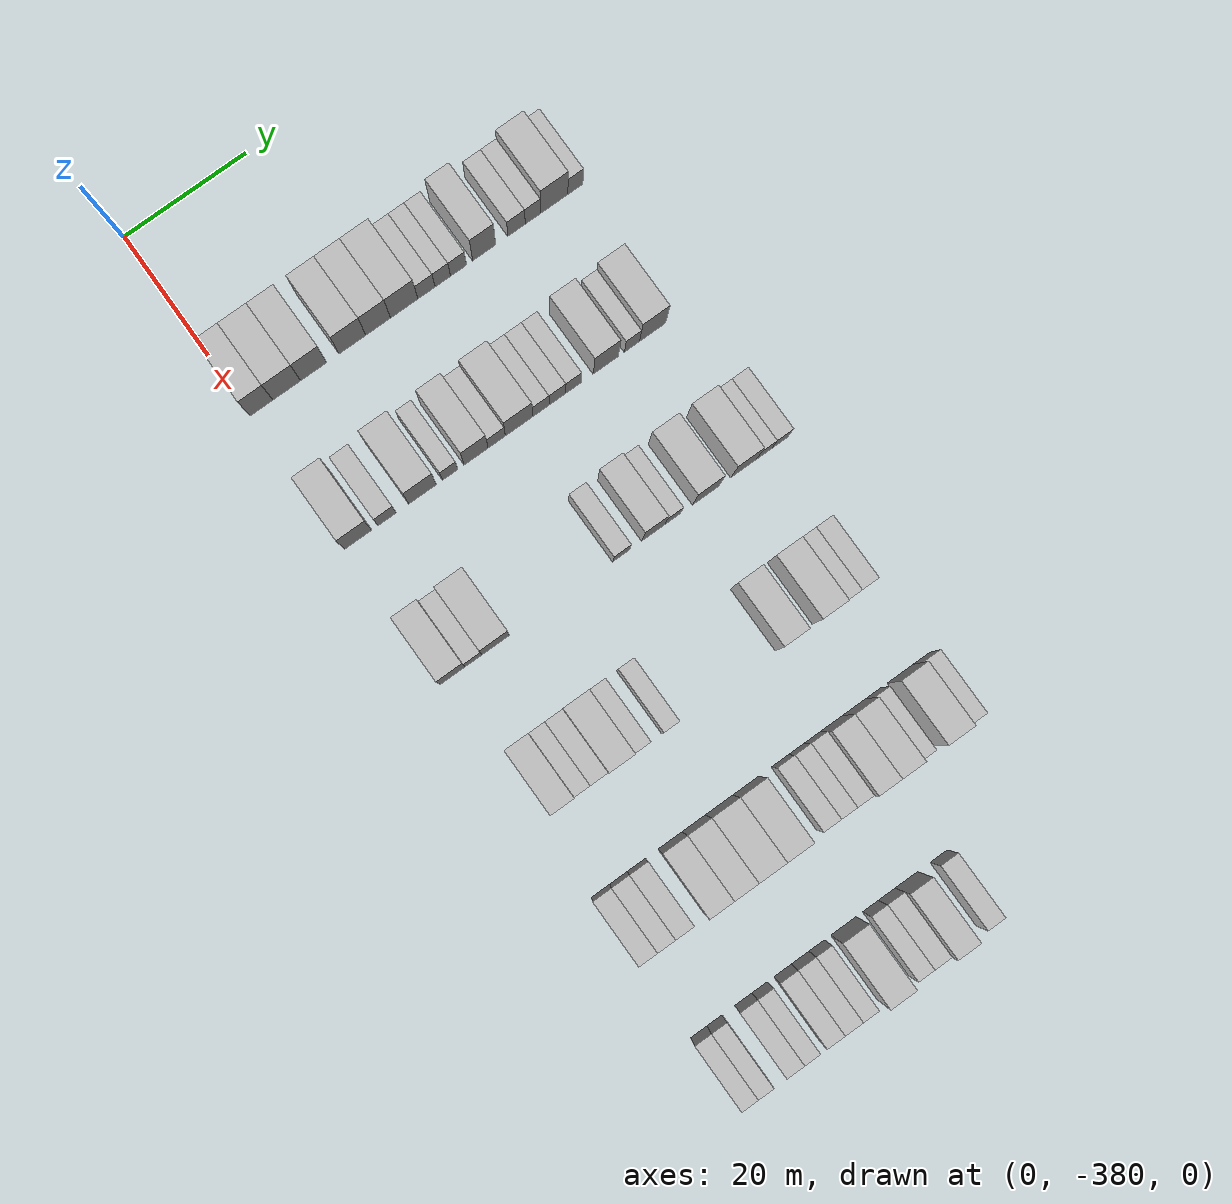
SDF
<sdf version="1.6">
 <world name="default">
  <model name="building_1">
   <static>1</static>
   <pose>25.0000 -378.1402 0 0.000000 0.000000 0.000000</pose>
   <link name="link">
    <pose>0 0 4.50 0 0 0</pose>
    <collision name="collision"><geometry><box><size>10.0000 3.7196 9.0000</size></box></geometry></collision>
    <visual name="visual">
     <cast_shadows>0</cast_shadows>
     <geometry><box><size>10.0000 3.7196 9.0000</size></box></geometry>
     <material>
      <script>
       <uri>model://HANNAS_wall/materials/scripts</uri>
       <uri>model://HANNAS_wall/materials/textures</uri>
       <name>vrc/HANNAS_wall</name>
      </script>
     </material>
    </visual>
   </link>
  </model>
  <model name="building_2">
   <static>1</static>
   <pose>25.0000 -374.0354 0 0.000000 0.000000 0.000000</pose>
   <link name="link">
    <pose>0 0 4.50 0 0 0</pose>
    <collision name="collision"><geometry><box><size>10.0000 4.4899 9.0000</size></box></geometry></collision>
    <visual name="visual">
     <cast_shadows>0</cast_shadows>
     <geometry><box><size>10.0000 4.4899 9.0000</size></box></geometry>
     <material>
      <script>
       <uri>model://HANNAS_wall/materials/scripts</uri>
       <uri>model://HANNAS_wall/materials/textures</uri>
       <name>vrc/HANNAS_wall</name>
      </script>
     </material>
    </visual>
   </link>
  </model>
  <model name="building_3">
   <static>1</static>
   <pose>25.0000 -369.6766 0 0.000000 0.000000 0.000000</pose>
   <link name="link">
    <pose>0 0 4.50 0 0 0</pose>
    <collision name="collision"><geometry><box><size>10.0000 4.2278 9.0000</size></box></geometry></collision>
    <visual name="visual">
     <cast_shadows>0</cast_shadows>
     <geometry><box><size>10.0000 4.2278 9.0000</size></box></geometry>
     <material>
      <script>
       <uri>model://HANNAS_wall/materials/scripts</uri>
       <uri>model://HANNAS_wall/materials/textures</uri>
       <name>vrc/HANNAS_wall</name>
      </script>
     </material>
    </visual>
   </link>
  </model>
  <model name="building_4">
   <static>1</static>
   <pose>25.0000 -363.3770 0 0.000000 0.000000 0.000000</pose>
   <link name="link">
    <pose>0 0 4.50 0 0 0</pose>
    <collision name="collision"><geometry><box><size>10.0000 4.3713 9.0000</size></box></geometry></collision>
    <visual name="visual">
     <cast_shadows>0</cast_shadows>
     <geometry><box><size>10.0000 4.3713 9.0000</size></box></geometry>
     <material>
      <script>
       <uri>model://HANNAS_wall/materials/scripts</uri>
       <uri>model://HANNAS_wall/materials/textures</uri>
       <name>vrc/HANNAS_wall</name>
      </script>
     </material>
    </visual>
   </link>
  </model>
  <model name="building_5">
   <static>1</static>
   <pose>25.0000 -359.1662 0 0.000000 0.000000 0.000000</pose>
   <link name="link">
    <pose>0 0 4.50 0 0 0</pose>
    <collision name="collision"><geometry><box><size>10.0000 4.0502 9.0000</size></box></geometry></collision>
    <visual name="visual">
     <cast_shadows>0</cast_shadows>
     <geometry><box><size>10.0000 4.0502 9.0000</size></box></geometry>
     <material>
      <script>
       <uri>model://HANNAS_wall/materials/scripts</uri>
       <uri>model://HANNAS_wall/materials/textures</uri>
       <name>vrc/HANNAS_wall</name>
      </script>
     </material>
    </visual>
   </link>
  </model>
  <model name="building_6">
   <static>1</static>
   <pose>25.0000 -354.8929 0 0.000000 0.000000 0.000000</pose>
   <link name="link">
    <pose>0 0 4.50 0 0 0</pose>
    <collision name="collision"><geometry><box><size>10.0000 4.4964 9.0000</size></box></geometry></collision>
    <visual name="visual">
     <cast_shadows>0</cast_shadows>
     <geometry><box><size>10.0000 4.4964 9.0000</size></box></geometry>
     <material>
      <script>
       <uri>model://HANNAS_wall/materials/scripts</uri>
       <uri>model://HANNAS_wall/materials/textures</uri>
       <name>vrc/HANNAS_wall</name>
      </script>
     </material>
    </visual>
   </link>
  </model>
  <model name="building_7">
   <static>1</static>
   <pose>25.0000 -351.2328 0 0.000000 0.000000 0.000000</pose>
   <link name="link">
    <pose>0 0 3.00 0 0 0</pose>
    <collision name="collision"><geometry><box><size>10.0000 2.8237 6.0000</size></box></geometry></collision>
    <visual name="visual">
     <cast_shadows>0</cast_shadows>
     <geometry><box><size>10.0000 2.8237 6.0000</size></box></geometry>
     <material>
      <script>
       <uri>model://HANNAS_wall/materials/scripts</uri>
       <uri>model://HANNAS_wall/materials/textures</uri>
       <name>vrc/HANNAS_wall</name>
      </script>
     </material>
    </visual>
   </link>
  </model>
  <model name="building_8">
   <static>1</static>
   <pose>25.0000 -348.5571 0 0.000000 0.000000 0.000000</pose>
   <link name="link">
    <pose>0 0 3.00 0 0 0</pose>
    <collision name="collision"><geometry><box><size>10.0000 2.5278 6.0000</size></box></geometry></collision>
    <visual name="visual">
     <cast_shadows>0</cast_shadows>
     <geometry><box><size>10.0000 2.5278 6.0000</size></box></geometry>
     <material>
      <script>
       <uri>model://HANNAS_wall/materials/scripts</uri>
       <uri>model://HANNAS_wall/materials/textures</uri>
       <name>vrc/HANNAS_wall</name>
      </script>
     </material>
    </visual>
   </link>
  </model>
  <model name="building_9">
   <static>1</static>
   <pose>25.0000 -345.9805 0 0.000000 0.000000 0.000000</pose>
   <link name="link">
    <pose>0 0 3.00 0 0 0</pose>
    <collision name="collision"><geometry><box><size>10.0000 2.6253 6.0000</size></box></geometry></collision>
    <visual name="visual">
     <cast_shadows>0</cast_shadows>
     <geometry><box><size>10.0000 2.6253 6.0000</size></box></geometry>
     <material>
      <script>
       <uri>model://HANNAS_wall/materials/scripts</uri>
       <uri>model://HANNAS_wall/materials/textures</uri>
       <name>vrc/HANNAS_wall</name>
      </script>
     </material>
    </visual>
   </link>
  </model>
  <model name="building_10">
   <static>1</static>
   <pose>25.0000 -341.7650 0 0.000000 0.000000 0.000000</pose>
   <link name="link">
    <pose>0 0 4.50 0 0 0</pose>
    <collision name="collision"><geometry><box><size>10.0000 3.8057 9.0000</size></box></geometry></collision>
    <visual name="visual">
     <cast_shadows>0</cast_shadows>
     <geometry><box><size>10.0000 3.8057 9.0000</size></box></geometry>
     <material>
      <script>
       <uri>model://HANNAS_wall/materials/scripts</uri>
       <uri>model://HANNAS_wall/materials/textures</uri>
       <name>vrc/HANNAS_wall</name>
      </script>
     </material>
    </visual>
   </link>
  </model>
  <model name="building_11">
   <static>1</static>
   <pose>25.0000 -336.4213 0 0.000000 0.000000 0.000000</pose>
   <link name="link">
    <pose>0 0 3.00 0 0 0</pose>
    <collision name="collision"><geometry><box><size>10.0000 2.8817 6.0000</size></box></geometry></collision>
    <visual name="visual">
     <cast_shadows>0</cast_shadows>
     <geometry><box><size>10.0000 2.8817 6.0000</size></box></geometry>
     <material>
      <script>
       <uri>model://HANNAS_wall/materials/scripts</uri>
       <uri>model://HANNAS_wall/materials/textures</uri>
       <name>vrc/HANNAS_wall</name>
      </script>
     </material>
    </visual>
   </link>
  </model>
  <model name="building_12">
   <static>1</static>
   <pose>25.0000 -333.7093 0 0.000000 0.000000 0.000000</pose>
   <link name="link">
    <pose>0 0 3.00 0 0 0</pose>
    <collision name="collision"><geometry><box><size>10.0000 2.5423 6.0000</size></box></geometry></collision>
    <visual name="visual">
     <cast_shadows>0</cast_shadows>
     <geometry><box><size>10.0000 2.5423 6.0000</size></box></geometry>
     <material>
      <script>
       <uri>model://HANNAS_wall/materials/scripts</uri>
       <uri>model://HANNAS_wall/materials/textures</uri>
       <name>vrc/HANNAS_wall</name>
      </script>
     </material>
    </visual>
   </link>
  </model>
  <model name="building_13">
   <static>1</static>
   <pose>25.0000 -330.1908 0 0.000000 0.000000 0.000000</pose>
   <link name="link">
    <pose>0 0 4.50 0 0 0</pose>
    <collision name="collision"><geometry><box><size>10.0000 4.4947 9.0000</size></box></geometry></collision>
    <visual name="visual">
     <cast_shadows>0</cast_shadows>
     <geometry><box><size>10.0000 4.4947 9.0000</size></box></geometry>
     <material>
      <script>
       <uri>model://HANNAS_wall/materials/scripts</uri>
       <uri>model://HANNAS_wall/materials/textures</uri>
       <name>vrc/HANNAS_wall</name>
      </script>
     </material>
    </visual>
   </link>
  </model>
  <model name="building_14">
   <static>1</static>
   <pose>25.0000 -326.6893 0 0.000000 0.000000 0.000000</pose>
   <link name="link">
    <pose>0 0 3.00 0 0 0</pose>
    <collision name="collision"><geometry><box><size>10.0000 2.5083 6.0000</size></box></geometry></collision>
    <visual name="visual">
     <cast_shadows>0</cast_shadows>
     <geometry><box><size>10.0000 2.5083 6.0000</size></box></geometry>
     <material>
      <script>
       <uri>model://HANNAS_wall/materials/scripts</uri>
       <uri>model://HANNAS_wall/materials/textures</uri>
       <name>vrc/HANNAS_wall</name>
      </script>
     </material>
    </visual>
   </link>
  </model>
  <model name="building_186">
   <static>1</static>
   <pose>47.0000 -377.8016 0 0.000000 0.000000 0.000000</pose>
   <link name="link">
    <pose>0 0 4.50 0 0 0</pose>
    <collision name="collision"><geometry><box><size>10.0000 4.3968 9.0000</size></box></geometry></collision>
    <visual name="visual">
     <cast_shadows>0</cast_shadows>
     <geometry><box><size>10.0000 4.3968 9.0000</size></box></geometry>
     <material>
      <script>
       <uri>model://HANNAS_wall/materials/scripts</uri>
       <uri>model://HANNAS_wall/materials/textures</uri>
       <name>vrc/HANNAS_wall</name>
      </script>
     </material>
    </visual>
   </link>
  </model>
  <model name="building_187">
   <static>1</static>
   <pose>47.0000 -373.1152 0 0.000000 0.000000 0.000000</pose>
   <link name="link">
    <pose>0 0 3.00 0 0 0</pose>
    <collision name="collision"><geometry><box><size>10.0000 2.9759 6.0000</size></box></geometry></collision>
    <visual name="visual">
     <cast_shadows>0</cast_shadows>
     <geometry><box><size>10.0000 2.9759 6.0000</size></box></geometry>
     <material>
      <script>
       <uri>model://HANNAS_wall/materials/scripts</uri>
       <uri>model://HANNAS_wall/materials/textures</uri>
       <name>vrc/HANNAS_wall</name>
      </script>
     </material>
    </visual>
   </link>
  </model>
  <model name="building_188">
   <static>1</static>
   <pose>47.0000 -367.3849 0 0.000000 0.000000 0.000000</pose>
   <link name="link">
    <pose>0 0 4.50 0 0 0</pose>
    <collision name="collision"><geometry><box><size>10.0000 4.4847 9.0000</size></box></geometry></collision>
    <visual name="visual">
     <cast_shadows>0</cast_shadows>
     <geometry><box><size>10.0000 4.4847 9.0000</size></box></geometry>
     <material>
      <script>
       <uri>model://HANNAS_wall/materials/scripts</uri>
       <uri>model://HANNAS_wall/materials/textures</uri>
       <name>vrc/HANNAS_wall</name>
      </script>
     </material>
    </visual>
   </link>
  </model>
  <model name="building_189">
   <static>1</static>
   <pose>47.0000 -362.8896 0 0.000000 0.000000 0.000000</pose>
   <link name="link">
    <pose>0 0 3.00 0 0 0</pose>
    <collision name="collision"><geometry><box><size>10.0000 2.5059 6.0000</size></box></geometry></collision>
    <visual name="visual">
     <cast_shadows>0</cast_shadows>
     <geometry><box><size>10.0000 2.5059 6.0000</size></box></geometry>
     <material>
      <script>
       <uri>model://HANNAS_wall/materials/scripts</uri>
       <uri>model://HANNAS_wall/materials/textures</uri>
       <name>vrc/HANNAS_wall</name>
      </script>
     </material>
    </visual>
   </link>
  </model>
  <model name="building_190">
   <static>1</static>
   <pose>47.0000 -358.6794 0 0.000000 0.000000 0.000000</pose>
   <link name="link">
    <pose>0 0 4.50 0 0 0</pose>
    <collision name="collision"><geometry><box><size>10.0000 3.9146 9.0000</size></box></geometry></collision>
    <visual name="visual">
     <cast_shadows>0</cast_shadows>
     <geometry><box><size>10.0000 3.9146 9.0000</size></box></geometry>
     <material>
      <script>
       <uri>model://HANNAS_wall/materials/scripts</uri>
       <uri>model://HANNAS_wall/materials/textures</uri>
       <name>vrc/HANNAS_wall</name>
      </script>
     </material>
    </visual>
   </link>
  </model>
  <model name="building_191">
   <static>1</static>
   <pose>47.0000 -355.3117 0 0.000000 0.000000 0.000000</pose>
   <link name="link">
    <pose>0 0 3.00 0 0 0</pose>
    <collision name="collision"><geometry><box><size>10.0000 2.8207 6.0000</size></box></geometry></collision>
    <visual name="visual">
     <cast_shadows>0</cast_shadows>
     <geometry><box><size>10.0000 2.8207 6.0000</size></box></geometry>
     <material>
      <script>
       <uri>model://HANNAS_wall/materials/scripts</uri>
       <uri>model://HANNAS_wall/materials/textures</uri>
       <name>vrc/HANNAS_wall</name>
      </script>
     </material>
    </visual>
   </link>
  </model>
  <model name="building_192">
   <static>1</static>
   <pose>47.0000 -351.6714 0 0.000000 0.000000 0.000000</pose>
   <link name="link">
    <pose>0 0 4.50 0 0 0</pose>
    <collision name="collision"><geometry><box><size>10.0000 4.4599 9.0000</size></box></geometry></collision>
    <visual name="visual">
     <cast_shadows>0</cast_shadows>
     <geometry><box><size>10.0000 4.4599 9.0000</size></box></geometry>
     <material>
      <script>
       <uri>model://HANNAS_wall/materials/scripts</uri>
       <uri>model://HANNAS_wall/materials/textures</uri>
       <name>vrc/HANNAS_wall</name>
      </script>
     </material>
    </visual>
   </link>
  </model>
  <model name="building_193">
   <static>1</static>
   <pose>47.0000 -348.0927 0 0.000000 0.000000 0.000000</pose>
   <link name="link">
    <pose>0 0 3.00 0 0 0</pose>
    <collision name="collision"><geometry><box><size>10.0000 2.6975 6.0000</size></box></geometry></collision>
    <visual name="visual">
     <cast_shadows>0</cast_shadows>
     <geometry><box><size>10.0000 2.6975 6.0000</size></box></geometry>
     <material>
      <script>
       <uri>model://HANNAS_wall/materials/scripts</uri>
       <uri>model://HANNAS_wall/materials/textures</uri>
       <name>vrc/HANNAS_wall</name>
      </script>
     </material>
    </visual>
   </link>
  </model>
  <model name="building_194">
   <static>1</static>
   <pose>47.0000 -345.3940 0 0.000000 0.000000 0.000000</pose>
   <link name="link">
    <pose>0 0 3.00 0 0 0</pose>
    <collision name="collision"><geometry><box><size>10.0000 2.6999 6.0000</size></box></geometry></collision>
    <visual name="visual">
     <cast_shadows>0</cast_shadows>
     <geometry><box><size>10.0000 2.6999 6.0000</size></box></geometry>
     <material>
      <script>
       <uri>model://HANNAS_wall/materials/scripts</uri>
       <uri>model://HANNAS_wall/materials/textures</uri>
       <name>vrc/HANNAS_wall</name>
      </script>
     </material>
    </visual>
   </link>
  </model>
  <model name="building_195">
   <static>1</static>
   <pose>47.0000 -342.7726 0 0.000000 0.000000 0.000000</pose>
   <link name="link">
    <pose>0 0 3.00 0 0 0</pose>
    <collision name="collision"><geometry><box><size>10.0000 2.5429 6.0000</size></box></geometry></collision>
    <visual name="visual">
     <cast_shadows>0</cast_shadows>
     <geometry><box><size>10.0000 2.5429 6.0000</size></box></geometry>
     <material>
      <script>
       <uri>model://HANNAS_wall/materials/scripts</uri>
       <uri>model://HANNAS_wall/materials/textures</uri>
       <name>vrc/HANNAS_wall</name>
      </script>
     </material>
    </visual>
   </link>
  </model>
  <model name="building_196">
   <static>1</static>
   <pose>47.0000 -337.4416 0 0.000000 0.000000 0.000000</pose>
   <link name="link">
    <pose>0 0 4.50 0 0 0</pose>
    <collision name="collision"><geometry><box><size>10.0000 4.1190 9.0000</size></box></geometry></collision>
    <visual name="visual">
     <cast_shadows>0</cast_shadows>
     <geometry><box><size>10.0000 4.1190 9.0000</size></box></geometry>
     <material>
      <script>
       <uri>model://HANNAS_wall/materials/scripts</uri>
       <uri>model://HANNAS_wall/materials/textures</uri>
       <name>vrc/HANNAS_wall</name>
      </script>
     </material>
    </visual>
   </link>
  </model>
  <model name="building_197">
   <static>1</static>
   <pose>47.0000 -333.1390 0 0.000000 0.000000 0.000000</pose>
   <link name="link">
    <pose>0 0 3.00 0 0 0</pose>
    <collision name="collision"><geometry><box><size>10.0000 2.4863 6.0000</size></box></geometry></collision>
    <visual name="visual">
     <cast_shadows>0</cast_shadows>
     <geometry><box><size>10.0000 2.4863 6.0000</size></box></geometry>
     <material>
      <script>
       <uri>model://HANNAS_wall/materials/scripts</uri>
       <uri>model://HANNAS_wall/materials/textures</uri>
       <name>vrc/HANNAS_wall</name>
      </script>
     </material>
    </visual>
   </link>
  </model>
  <model name="building_198">
   <static>1</static>
   <pose>47.0000 -329.7337 0 0.000000 0.000000 0.000000</pose>
   <link name="link">
    <pose>0 0 4.50 0 0 0</pose>
    <collision name="collision"><geometry><box><size>10.0000 4.3243 9.0000</size></box></geometry></collision>
    <visual name="visual">
     <cast_shadows>0</cast_shadows>
     <geometry><box><size>10.0000 4.3243 9.0000</size></box></geometry>
     <material>
      <script>
       <uri>model://HANNAS_wall/materials/scripts</uri>
       <uri>model://HANNAS_wall/materials/textures</uri>
       <name>vrc/HANNAS_wall</name>
      </script>
     </material>
    </visual>
   </link>
  </model>
  <model name="building_371">
   <static>1</static>
   <pose>69.0000 -377.9864 0 0.000000 0.000000 0.000000</pose>
   <link name="link">
    <pose>0 0 4.50 0 0 0</pose>
    <collision name="collision"><geometry><box><size>10.0000 4.0272 9.0000</size></box></geometry></collision>
    <visual name="visual">
     <cast_shadows>0</cast_shadows>
     <geometry><box><size>10.0000 4.0272 9.0000</size></box></geometry>
     <material>
      <script>
       <uri>model://HANNAS_wall/materials/scripts</uri>
       <uri>model://HANNAS_wall/materials/textures</uri>
       <name>vrc/HANNAS_wall</name>
      </script>
     </material>
    </visual>
   </link>
  </model>
  <model name="building_372">
   <static>1</static>
   <pose>69.0000 -374.6378 0 0.000000 0.000000 0.000000</pose>
   <link name="link">
    <pose>0 0 3.00 0 0 0</pose>
    <collision name="collision"><geometry><box><size>10.0000 2.6700 6.0000</size></box></geometry></collision>
    <visual name="visual">
     <cast_shadows>0</cast_shadows>
     <geometry><box><size>10.0000 2.6700 6.0000</size></box></geometry>
     <material>
      <script>
       <uri>model://HANNAS_wall/materials/scripts</uri>
       <uri>model://HANNAS_wall/materials/textures</uri>
       <name>vrc/HANNAS_wall</name>
      </script>
     </material>
    </visual>
   </link>
  </model>
  <model name="building_373">
   <static>1</static>
   <pose>69.0000 -371.1029 0 0.000000 0.000000 0.000000</pose>
   <link name="link">
    <pose>0 0 4.50 0 0 0</pose>
    <collision name="collision"><geometry><box><size>10.0000 4.3998 9.0000</size></box></geometry></collision>
    <visual name="visual">
     <cast_shadows>0</cast_shadows>
     <geometry><box><size>10.0000 4.3998 9.0000</size></box></geometry>
     <material>
      <script>
       <uri>model://HANNAS_wall/materials/scripts</uri>
       <uri>model://HANNAS_wall/materials/textures</uri>
       <name>vrc/HANNAS_wall</name>
      </script>
     </material>
    </visual>
   </link>
  </model>
  <model name="building_374">
   <static>1</static>
   <pose>69.0000 -350.7700 0 0.000000 0.000000 0.000000</pose>
   <link name="link">
    <pose>0 0 3.00 0 0 0</pose>
    <collision name="collision"><geometry><box><size>10.0000 2.7554 6.0000</size></box></geometry></collision>
    <visual name="visual">
     <cast_shadows>0</cast_shadows>
     <geometry><box><size>10.0000 2.7554 6.0000</size></box></geometry>
     <material>
      <script>
       <uri>model://HANNAS_wall/materials/scripts</uri>
       <uri>model://HANNAS_wall/materials/textures</uri>
       <name>vrc/HANNAS_wall</name>
      </script>
     </material>
    </visual>
   </link>
  </model>
  <model name="building_375">
   <static>1</static>
   <pose>69.0000 -345.5455 0 0.000000 0.000000 0.000000</pose>
   <link name="link">
    <pose>0 0 4.50 0 0 0</pose>
    <collision name="collision"><geometry><box><size>10.0000 3.6934 9.0000</size></box></geometry></collision>
    <visual name="visual">
     <cast_shadows>0</cast_shadows>
     <geometry><box><size>10.0000 3.6934 9.0000</size></box></geometry>
     <material>
      <script>
       <uri>model://HANNAS_wall/materials/scripts</uri>
       <uri>model://HANNAS_wall/materials/textures</uri>
       <name>vrc/HANNAS_wall</name>
      </script>
     </material>
    </visual>
   </link>
  </model>
  <model name="building_376">
   <static>1</static>
   <pose>69.0000 -342.3881 0 0.000000 0.000000 0.000000</pose>
   <link name="link">
    <pose>0 0 3.00 0 0 0</pose>
    <collision name="collision"><geometry><box><size>10.0000 2.6215 6.0000</size></box></geometry></collision>
    <visual name="visual">
     <cast_shadows>0</cast_shadows>
     <geometry><box><size>10.0000 2.6215 6.0000</size></box></geometry>
     <material>
      <script>
       <uri>model://HANNAS_wall/materials/scripts</uri>
       <uri>model://HANNAS_wall/materials/textures</uri>
       <name>vrc/HANNAS_wall</name>
      </script>
     </material>
    </visual>
   </link>
  </model>
  <model name="building_377">
   <static>1</static>
   <pose>69.0000 -336.9369 0 0.000000 0.000000 0.000000</pose>
   <link name="link">
    <pose>0 0 4.50 0 0 0</pose>
    <collision name="collision"><geometry><box><size>10.0000 4.2810 9.0000</size></box></geometry></collision>
    <visual name="visual">
     <cast_shadows>0</cast_shadows>
     <geometry><box><size>10.0000 4.2810 9.0000</size></box></geometry>
     <material>
      <script>
       <uri>model://HANNAS_wall/materials/scripts</uri>
       <uri>model://HANNAS_wall/materials/textures</uri>
       <name>vrc/HANNAS_wall</name>
      </script>
     </material>
    </visual>
   </link>
  </model>
  <model name="building_378">
   <static>1</static>
   <pose>69.0000 -330.6992 0 0.000000 0.000000 0.000000</pose>
   <link name="link">
    <pose>0 0 4.50 0 0 0</pose>
    <collision name="collision"><geometry><box><size>10.0000 4.1943 9.0000</size></box></geometry></collision>
    <visual name="visual">
     <cast_shadows>0</cast_shadows>
     <geometry><box><size>10.0000 4.1943 9.0000</size></box></geometry>
     <material>
      <script>
       <uri>model://HANNAS_wall/materials/scripts</uri>
       <uri>model://HANNAS_wall/materials/textures</uri>
       <name>vrc/HANNAS_wall</name>
      </script>
     </material>
    </visual>
   </link>
  </model>
  <model name="building_379">
   <static>1</static>
   <pose>69.0000 -327.3389 0 0.000000 0.000000 0.000000</pose>
   <link name="link">
    <pose>0 0 3.00 0 0 0</pose>
    <collision name="collision"><geometry><box><size>10.0000 2.5264 6.0000</size></box></geometry></collision>
    <visual name="visual">
     <cast_shadows>0</cast_shadows>
     <geometry><box><size>10.0000 2.5264 6.0000</size></box></geometry>
     <material>
      <script>
       <uri>model://HANNAS_wall/materials/scripts</uri>
       <uri>model://HANNAS_wall/materials/textures</uri>
       <name>vrc/HANNAS_wall</name>
      </script>
     </material>
    </visual>
   </link>
  </model>
  <model name="building_380">
   <static>1</static>
   <pose>69.0000 -324.7512 0 0.000000 0.000000 0.000000</pose>
   <link name="link">
    <pose>0 0 3.00 0 0 0</pose>
    <collision name="collision"><geometry><box><size>10.0000 2.6488 6.0000</size></box></geometry></collision>
    <visual name="visual">
     <cast_shadows>0</cast_shadows>
     <geometry><box><size>10.0000 2.6488 6.0000</size></box></geometry>
     <material>
      <script>
       <uri>model://HANNAS_wall/materials/scripts</uri>
       <uri>model://HANNAS_wall/materials/textures</uri>
       <name>vrc/HANNAS_wall</name>
      </script>
     </material>
    </visual>
   </link>
  </model>
  <model name="building_563">
   <static>1</static>
   <pose>91.0000 -376.1266 0 0.000000 0.000000 0.000000</pose>
   <link name="link">
    <pose>0 0 4.50 0 0 0</pose>
    <collision name="collision"><geometry><box><size>10.0000 3.7467 9.0000</size></box></geometry></collision>
    <visual name="visual">
     <cast_shadows>0</cast_shadows>
     <geometry><box><size>10.0000 3.7467 9.0000</size></box></geometry>
     <material>
      <script>
       <uri>model://HANNAS_wall/materials/scripts</uri>
       <uri>model://HANNAS_wall/materials/textures</uri>
       <name>vrc/HANNAS_wall</name>
      </script>
     </material>
    </visual>
   </link>
  </model>
  <model name="building_564">
   <static>1</static>
   <pose>91.0000 -372.9911 0 0.000000 0.000000 0.000000</pose>
   <link name="link">
    <pose>0 0 3.00 0 0 0</pose>
    <collision name="collision"><geometry><box><size>10.0000 2.5243 6.0000</size></box></geometry></collision>
    <visual name="visual">
     <cast_shadows>0</cast_shadows>
     <geometry><box><size>10.0000 2.5243 6.0000</size></box></geometry>
     <material>
      <script>
       <uri>model://HANNAS_wall/materials/scripts</uri>
       <uri>model://HANNAS_wall/materials/textures</uri>
       <name>vrc/HANNAS_wall</name>
      </script>
     </material>
    </visual>
   </link>
  </model>
  <model name="building_565">
   <static>1</static>
   <pose>91.0000 -370.3128 0 0.000000 0.000000 0.000000</pose>
   <link name="link">
    <pose>0 0 3.00 0 0 0</pose>
    <collision name="collision"><geometry><box><size>10.0000 2.8322 6.0000</size></box></geometry></collision>
    <visual name="visual">
     <cast_shadows>0</cast_shadows>
     <geometry><box><size>10.0000 2.8322 6.0000</size></box></geometry>
     <material>
      <script>
       <uri>model://HANNAS_wall/materials/scripts</uri>
       <uri>model://HANNAS_wall/materials/textures</uri>
       <name>vrc/HANNAS_wall</name>
      </script>
     </material>
    </visual>
   </link>
  </model>
  <model name="building_566">
   <static>1</static>
   <pose>91.0000 -366.8296 0 0.000000 0.000000 0.000000</pose>
   <link name="link">
    <pose>0 0 4.50 0 0 0</pose>
    <collision name="collision"><geometry><box><size>10.0000 4.1342 9.0000</size></box></geometry></collision>
    <visual name="visual">
     <cast_shadows>0</cast_shadows>
     <geometry><box><size>10.0000 4.1342 9.0000</size></box></geometry>
     <material>
      <script>
       <uri>model://HANNAS_wall/materials/scripts</uri>
       <uri>model://HANNAS_wall/materials/textures</uri>
       <name>vrc/HANNAS_wall</name>
      </script>
     </material>
    </visual>
   </link>
  </model>
  <model name="building_567">
   <static>1</static>
   <pose>91.0000 -363.4539 0 0.000000 0.000000 0.000000</pose>
   <link name="link">
    <pose>0 0 3.00 0 0 0</pose>
    <collision name="collision"><geometry><box><size>10.0000 2.6172 6.0000</size></box></geometry></collision>
    <visual name="visual">
     <cast_shadows>0</cast_shadows>
     <geometry><box><size>10.0000 2.6172 6.0000</size></box></geometry>
     <material>
      <script>
       <uri>model://HANNAS_wall/materials/scripts</uri>
       <uri>model://HANNAS_wall/materials/textures</uri>
       <name>vrc/HANNAS_wall</name>
      </script>
     </material>
    </visual>
   </link>
  </model>
  <model name="building_568">
   <static>1</static>
   <pose>91.0000 -358.8875 0 0.000000 0.000000 0.000000</pose>
   <link name="link">
    <pose>0 0 3.00 0 0 0</pose>
    <collision name="collision"><geometry><box><size>10.0000 2.5157 6.0000</size></box></geometry></collision>
    <visual name="visual">
     <cast_shadows>0</cast_shadows>
     <geometry><box><size>10.0000 2.5157 6.0000</size></box></geometry>
     <material>
      <script>
       <uri>model://HANNAS_wall/materials/scripts</uri>
       <uri>model://HANNAS_wall/materials/textures</uri>
       <name>vrc/HANNAS_wall</name>
      </script>
     </material>
    </visual>
   </link>
  </model>
  <model name="building_569">
   <static>1</static>
   <pose>91.0000 -339.5620 0 0.000000 0.000000 0.000000</pose>
   <link name="link">
    <pose>0 0 4.50 0 0 0</pose>
    <collision name="collision"><geometry><box><size>10.0000 4.0451 9.0000</size></box></geometry></collision>
    <visual name="visual">
     <cast_shadows>0</cast_shadows>
     <geometry><box><size>10.0000 4.0451 9.0000</size></box></geometry>
     <material>
      <script>
       <uri>model://HANNAS_wall/materials/scripts</uri>
       <uri>model://HANNAS_wall/materials/textures</uri>
       <name>vrc/HANNAS_wall</name>
      </script>
     </material>
    </visual>
   </link>
  </model>
  <model name="building_570">
   <static>1</static>
   <pose>91.0000 -333.4639 0 0.000000 0.000000 0.000000</pose>
   <link name="link">
    <pose>0 0 4.50 0 0 0</pose>
    <collision name="collision"><geometry><box><size>10.0000 4.1510 9.0000</size></box></geometry></collision>
    <visual name="visual">
     <cast_shadows>0</cast_shadows>
     <geometry><box><size>10.0000 4.1510 9.0000</size></box></geometry>
     <material>
      <script>
       <uri>model://HANNAS_wall/materials/scripts</uri>
       <uri>model://HANNAS_wall/materials/textures</uri>
       <name>vrc/HANNAS_wall</name>
      </script>
     </material>
    </visual>
   </link>
  </model>
  <model name="building_571">
   <static>1</static>
   <pose>91.0000 -330.0271 0 0.000000 0.000000 0.000000</pose>
   <link name="link">
    <pose>0 0 3.00 0 0 0</pose>
    <collision name="collision"><geometry><box><size>10.0000 2.7226 6.0000</size></box></geometry></collision>
    <visual name="visual">
     <cast_shadows>0</cast_shadows>
     <geometry><box><size>10.0000 2.7226 6.0000</size></box></geometry>
     <material>
      <script>
       <uri>model://HANNAS_wall/materials/scripts</uri>
       <uri>model://HANNAS_wall/materials/textures</uri>
       <name>vrc/HANNAS_wall</name>
      </script>
     </material>
    </visual>
   </link>
  </model>
  <model name="building_572">
   <static>1</static>
   <pose>91.0000 -327.3144 0 0.000000 0.000000 0.000000</pose>
   <link name="link">
    <pose>0 0 3.00 0 0 0</pose>
    <collision name="collision"><geometry><box><size>10.0000 2.7029 6.0000</size></box></geometry></collision>
    <visual name="visual">
     <cast_shadows>0</cast_shadows>
     <geometry><box><size>10.0000 2.7029 6.0000</size></box></geometry>
     <material>
      <script>
       <uri>model://HANNAS_wall/materials/scripts</uri>
       <uri>model://HANNAS_wall/materials/textures</uri>
       <name>vrc/HANNAS_wall</name>
      </script>
     </material>
    </visual>
   </link>
  </model>
  <model name="building_750">
   <static>1</static>
   <pose>113.0000 -378.5316 0 0.000000 0.000000 0.000000</pose>
   <link name="link">
    <pose>0 0 3.00 0 0 0</pose>
    <collision name="collision"><geometry><box><size>10.0000 2.9367 6.0000</size></box></geometry></collision>
    <visual name="visual">
     <cast_shadows>0</cast_shadows>
     <geometry><box><size>10.0000 2.9367 6.0000</size></box></geometry>
     <material>
      <script>
       <uri>model://HANNAS_wall/materials/scripts</uri>
       <uri>model://HANNAS_wall/materials/textures</uri>
       <name>vrc/HANNAS_wall</name>
      </script>
     </material>
    </visual>
   </link>
  </model>
  <model name="building_751">
   <static>1</static>
   <pose>113.0000 -375.6560 0 0.000000 0.000000 0.000000</pose>
   <link name="link">
    <pose>0 0 3.00 0 0 0</pose>
    <collision name="collision"><geometry><box><size>10.0000 2.8146 6.0000</size></box></geometry></collision>
    <visual name="visual">
     <cast_shadows>0</cast_shadows>
     <geometry><box><size>10.0000 2.8146 6.0000</size></box></geometry>
     <material>
      <script>
       <uri>model://HANNAS_wall/materials/scripts</uri>
       <uri>model://HANNAS_wall/materials/textures</uri>
       <name>vrc/HANNAS_wall</name>
      </script>
     </material>
    </visual>
   </link>
  </model>
  <model name="building_752">
   <static>1</static>
   <pose>113.0000 -372.7775 0 0.000000 0.000000 0.000000</pose>
   <link name="link">
    <pose>0 0 3.00 0 0 0</pose>
    <collision name="collision"><geometry><box><size>10.0000 2.9423 6.0000</size></box></geometry></collision>
    <visual name="visual">
     <cast_shadows>0</cast_shadows>
     <geometry><box><size>10.0000 2.9423 6.0000</size></box></geometry>
     <material>
      <script>
       <uri>model://HANNAS_wall/materials/scripts</uri>
       <uri>model://HANNAS_wall/materials/textures</uri>
       <name>vrc/HANNAS_wall</name>
      </script>
     </material>
    </visual>
   </link>
  </model>
  <model name="building_753">
   <static>1</static>
   <pose>113.0000 -367.3731 0 0.000000 0.000000 0.000000</pose>
   <link name="link">
    <pose>0 0 4.50 0 0 0</pose>
    <collision name="collision"><geometry><box><size>10.0000 3.8665 9.0000</size></box></geometry></collision>
    <visual name="visual">
     <cast_shadows>0</cast_shadows>
     <geometry><box><size>10.0000 3.8665 9.0000</size></box></geometry>
     <material>
      <script>
       <uri>model://HANNAS_wall/materials/scripts</uri>
       <uri>model://HANNAS_wall/materials/textures</uri>
       <name>vrc/HANNAS_wall</name>
      </script>
     </material>
    </visual>
   </link>
  </model>
  <model name="building_754">
   <static>1</static>
   <pose>113.0000 -363.5454 0 0.000000 0.000000 0.000000</pose>
   <link name="link">
    <pose>0 0 4.50 0 0 0</pose>
    <collision name="collision"><geometry><box><size>10.0000 3.7890 9.0000</size></box></geometry></collision>
    <visual name="visual">
     <cast_shadows>0</cast_shadows>
     <geometry><box><size>10.0000 3.7890 9.0000</size></box></geometry>
     <material>
      <script>
       <uri>model://HANNAS_wall/materials/scripts</uri>
       <uri>model://HANNAS_wall/materials/textures</uri>
       <name>vrc/HANNAS_wall</name>
      </script>
     </material>
    </visual>
   </link>
  </model>
  <model name="building_755">
   <static>1</static>
   <pose>113.0000 -359.4533 0 0.000000 0.000000 0.000000</pose>
   <link name="link">
    <pose>0 0 4.50 0 0 0</pose>
    <collision name="collision"><geometry><box><size>10.0000 4.3952 9.0000</size></box></geometry></collision>
    <visual name="visual">
     <cast_shadows>0</cast_shadows>
     <geometry><box><size>10.0000 4.3952 9.0000</size></box></geometry>
     <material>
      <script>
       <uri>model://HANNAS_wall/materials/scripts</uri>
       <uri>model://HANNAS_wall/materials/textures</uri>
       <name>vrc/HANNAS_wall</name>
      </script>
     </material>
    </visual>
   </link>
  </model>
  <model name="building_756">
   <static>1</static>
   <pose>113.0000 -355.1449 0 0.000000 0.000000 0.000000</pose>
   <link name="link">
    <pose>0 0 4.50 0 0 0</pose>
    <collision name="collision"><geometry><box><size>10.0000 4.2216 9.0000</size></box></geometry></collision>
    <visual name="visual">
     <cast_shadows>0</cast_shadows>
     <geometry><box><size>10.0000 4.2216 9.0000</size></box></geometry>
     <material>
      <script>
       <uri>model://HANNAS_wall/materials/scripts</uri>
       <uri>model://HANNAS_wall/materials/textures</uri>
       <name>vrc/HANNAS_wall</name>
      </script>
     </material>
    </visual>
   </link>
  </model>
  <model name="building_757">
   <static>1</static>
   <pose>113.0000 -349.6240 0 0.000000 0.000000 0.000000</pose>
   <link name="link">
    <pose>0 0 3.00 0 0 0</pose>
    <collision name="collision"><geometry><box><size>10.0000 2.8202 6.0000</size></box></geometry></collision>
    <visual name="visual">
     <cast_shadows>0</cast_shadows>
     <geometry><box><size>10.0000 2.8202 6.0000</size></box></geometry>
     <material>
      <script>
       <uri>model://HANNAS_wall/materials/scripts</uri>
       <uri>model://HANNAS_wall/materials/textures</uri>
       <name>vrc/HANNAS_wall</name>
      </script>
     </material>
    </visual>
   </link>
  </model>
  <model name="building_758">
   <static>1</static>
   <pose>113.0000 -346.9383 0 0.000000 0.000000 0.000000</pose>
   <link name="link">
    <pose>0 0 3.00 0 0 0</pose>
    <collision name="collision"><geometry><box><size>10.0000 2.5513 6.0000</size></box></geometry></collision>
    <visual name="visual">
     <cast_shadows>0</cast_shadows>
     <geometry><box><size>10.0000 2.5513 6.0000</size></box></geometry>
     <material>
      <script>
       <uri>model://HANNAS_wall/materials/scripts</uri>
       <uri>model://HANNAS_wall/materials/textures</uri>
       <name>vrc/HANNAS_wall</name>
      </script>
     </material>
    </visual>
   </link>
  </model>
  <model name="building_759">
   <static>1</static>
   <pose>113.0000 -344.3524 0 0.000000 0.000000 0.000000</pose>
   <link name="link">
    <pose>0 0 3.00 0 0 0</pose>
    <collision name="collision"><geometry><box><size>10.0000 2.6206 6.0000</size></box></geometry></collision>
    <visual name="visual">
     <cast_shadows>0</cast_shadows>
     <geometry><box><size>10.0000 2.6206 6.0000</size></box></geometry>
     <material>
      <script>
       <uri>model://HANNAS_wall/materials/scripts</uri>
       <uri>model://HANNAS_wall/materials/textures</uri>
       <name>vrc/HANNAS_wall</name>
      </script>
     </material>
    </visual>
   </link>
  </model>
  <model name="building_760">
   <static>1</static>
   <pose>113.0000 -341.2047 0 0.000000 0.000000 0.000000</pose>
   <link name="link">
    <pose>0 0 4.50 0 0 0</pose>
    <collision name="collision"><geometry><box><size>10.0000 3.6748 9.0000</size></box></geometry></collision>
    <visual name="visual">
     <cast_shadows>0</cast_shadows>
     <geometry><box><size>10.0000 3.6748 9.0000</size></box></geometry>
     <material>
      <script>
       <uri>model://HANNAS_wall/materials/scripts</uri>
       <uri>model://HANNAS_wall/materials/textures</uri>
       <name>vrc/HANNAS_wall</name>
      </script>
     </material>
    </visual>
   </link>
  </model>
  <model name="building_761">
   <static>1</static>
   <pose>113.0000 -337.4935 0 0.000000 0.000000 0.000000</pose>
   <link name="link">
    <pose>0 0 4.50 0 0 0</pose>
    <collision name="collision"><geometry><box><size>10.0000 3.7476 9.0000</size></box></geometry></collision>
    <visual name="visual">
     <cast_shadows>0</cast_shadows>
     <geometry><box><size>10.0000 3.7476 9.0000</size></box></geometry>
     <material>
      <script>
       <uri>model://HANNAS_wall/materials/scripts</uri>
       <uri>model://HANNAS_wall/materials/textures</uri>
       <name>vrc/HANNAS_wall</name>
      </script>
     </material>
    </visual>
   </link>
  </model>
  <model name="building_762">
   <static>1</static>
   <pose>113.0000 -334.3845 0 0.000000 0.000000 0.000000</pose>
   <link name="link">
    <pose>0 0 3.00 0 0 0</pose>
    <collision name="collision"><geometry><box><size>10.0000 2.4703 6.0000</size></box></geometry></collision>
    <visual name="visual">
     <cast_shadows>0</cast_shadows>
     <geometry><box><size>10.0000 2.4703 6.0000</size></box></geometry>
     <material>
      <script>
       <uri>model://HANNAS_wall/materials/scripts</uri>
       <uri>model://HANNAS_wall/materials/textures</uri>
       <name>vrc/HANNAS_wall</name>
      </script>
     </material>
    </visual>
   </link>
  </model>
  <model name="building_763">
   <static>1</static>
   <pose>113.0000 -330.0041 0 0.000000 0.000000 0.000000</pose>
   <link name="link">
    <pose>0 0 4.50 0 0 0</pose>
    <collision name="collision"><geometry><box><size>10.0000 4.2905 9.0000</size></box></geometry></collision>
    <visual name="visual">
     <cast_shadows>0</cast_shadows>
     <geometry><box><size>10.0000 4.2905 9.0000</size></box></geometry>
     <material>
      <script>
       <uri>model://HANNAS_wall/materials/scripts</uri>
       <uri>model://HANNAS_wall/materials/textures</uri>
       <name>vrc/HANNAS_wall</name>
      </script>
     </material>
    </visual>
   </link>
  </model>
  <model name="building_764">
   <static>1</static>
   <pose>113.0000 -326.4579 0 0.000000 0.000000 0.000000</pose>
   <link name="link">
    <pose>0 0 3.00 0 0 0</pose>
    <collision name="collision"><geometry><box><size>10.0000 2.8019 6.0000</size></box></geometry></collision>
    <visual name="visual">
     <cast_shadows>0</cast_shadows>
     <geometry><box><size>10.0000 2.8019 6.0000</size></box></geometry>
     <material>
      <script>
       <uri>model://HANNAS_wall/materials/scripts</uri>
       <uri>model://HANNAS_wall/materials/textures</uri>
       <name>vrc/HANNAS_wall</name>
      </script>
     </material>
    </visual>
   </link>
  </model>
  <model name="building_938">
   <static>1</static>
   <pose>135.0000 -378.7081 0 0.000000 0.000000 0.000000</pose>
   <link name="link">
    <pose>0 0 3.00 0 0 0</pose>
    <collision name="collision"><geometry><box><size>10.0000 2.5838 6.0000</size></box></geometry></collision>
    <visual name="visual">
     <cast_shadows>0</cast_shadows>
     <geometry><box><size>10.0000 2.5838 6.0000</size></box></geometry>
     <material>
      <script>
       <uri>model://HANNAS_wall/materials/scripts</uri>
       <uri>model://HANNAS_wall/materials/textures</uri>
       <name>vrc/HANNAS_wall</name>
      </script>
     </material>
    </visual>
   </link>
  </model>
  <model name="building_939">
   <static>1</static>
   <pose>135.0000 -376.1975 0 0.000000 0.000000 0.000000</pose>
   <link name="link">
    <pose>0 0 3.00 0 0 0</pose>
    <collision name="collision"><geometry><box><size>10.0000 2.4373 6.0000</size></box></geometry></collision>
    <visual name="visual">
     <cast_shadows>0</cast_shadows>
     <geometry><box><size>10.0000 2.4373 6.0000</size></box></geometry>
     <material>
      <script>
       <uri>model://HANNAS_wall/materials/scripts</uri>
       <uri>model://HANNAS_wall/materials/textures</uri>
       <name>vrc/HANNAS_wall</name>
      </script>
     </material>
    </visual>
   </link>
  </model>
  <model name="building_940">
   <static>1</static>
   <pose>135.0000 -371.5923 0 0.000000 0.000000 0.000000</pose>
   <link name="link">
    <pose>0 0 3.00 0 0 0</pose>
    <collision name="collision"><geometry><box><size>10.0000 2.7732 6.0000</size></box></geometry></collision>
    <visual name="visual">
     <cast_shadows>0</cast_shadows>
     <geometry><box><size>10.0000 2.7732 6.0000</size></box></geometry>
     <material>
      <script>
       <uri>model://HANNAS_wall/materials/scripts</uri>
       <uri>model://HANNAS_wall/materials/textures</uri>
       <name>vrc/HANNAS_wall</name>
      </script>
     </material>
    </visual>
   </link>
  </model>
  <model name="building_941">
   <static>1</static>
   <pose>135.0000 -368.9631 0 0.000000 0.000000 0.000000</pose>
   <link name="link">
    <pose>0 0 3.00 0 0 0</pose>
    <collision name="collision"><geometry><box><size>10.0000 2.4851 6.0000</size></box></geometry></collision>
    <visual name="visual">
     <cast_shadows>0</cast_shadows>
     <geometry><box><size>10.0000 2.4851 6.0000</size></box></geometry>
     <material>
      <script>
       <uri>model://HANNAS_wall/materials/scripts</uri>
       <uri>model://HANNAS_wall/materials/textures</uri>
       <name>vrc/HANNAS_wall</name>
      </script>
     </material>
    </visual>
   </link>
  </model>
  <model name="building_942">
   <static>1</static>
   <pose>135.0000 -365.3047 0 0.000000 0.000000 0.000000</pose>
   <link name="link">
    <pose>0 0 3.00 0 0 0</pose>
    <collision name="collision"><geometry><box><size>10.0000 2.8316 6.0000</size></box></geometry></collision>
    <visual name="visual">
     <cast_shadows>0</cast_shadows>
     <geometry><box><size>10.0000 2.8316 6.0000</size></box></geometry>
     <material>
      <script>
       <uri>model://HANNAS_wall/materials/scripts</uri>
       <uri>model://HANNAS_wall/materials/textures</uri>
       <name>vrc/HANNAS_wall</name>
      </script>
     </material>
    </visual>
   </link>
  </model>
  <model name="building_943">
   <static>1</static>
   <pose>135.0000 -362.4732 0 0.000000 0.000000 0.000000</pose>
   <link name="link">
    <pose>0 0 3.00 0 0 0</pose>
    <collision name="collision"><geometry><box><size>10.0000 2.8315 6.0000</size></box></geometry></collision>
    <visual name="visual">
     <cast_shadows>0</cast_shadows>
     <geometry><box><size>10.0000 2.8315 6.0000</size></box></geometry>
     <material>
      <script>
       <uri>model://HANNAS_wall/materials/scripts</uri>
       <uri>model://HANNAS_wall/materials/textures</uri>
       <name>vrc/HANNAS_wall</name>
      </script>
     </material>
    </visual>
   </link>
  </model>
  <model name="building_944">
   <static>1</static>
   <pose>135.0000 -359.8059 0 0.000000 0.000000 0.000000</pose>
   <link name="link">
    <pose>0 0 3.00 0 0 0</pose>
    <collision name="collision"><geometry><box><size>10.0000 2.5030 6.0000</size></box></geometry></collision>
    <visual name="visual">
     <cast_shadows>0</cast_shadows>
     <geometry><box><size>10.0000 2.5030 6.0000</size></box></geometry>
     <material>
      <script>
       <uri>model://HANNAS_wall/materials/scripts</uri>
       <uri>model://HANNAS_wall/materials/textures</uri>
       <name>vrc/HANNAS_wall</name>
      </script>
     </material>
    </visual>
   </link>
  </model>
  <model name="building_945">
   <static>1</static>
   <pose>135.0000 -355.4887 0 0.000000 0.000000 0.000000</pose>
   <link name="link">
    <pose>0 0 4.50 0 0 0</pose>
    <collision name="collision"><geometry><box><size>10.0000 4.1315 9.0000</size></box></geometry></collision>
    <visual name="visual">
     <cast_shadows>0</cast_shadows>
     <geometry><box><size>10.0000 4.1315 9.0000</size></box></geometry>
     <material>
      <script>
       <uri>model://HANNAS_wall/materials/scripts</uri>
       <uri>model://HANNAS_wall/materials/textures</uri>
       <name>vrc/HANNAS_wall</name>
      </script>
     </material>
    </visual>
   </link>
  </model>
  <model name="building_946">
   <static>1</static>
   <pose>135.0000 -351.1321 0 0.000000 0.000000 0.000000</pose>
   <link name="link">
    <pose>0 0 3.00 0 0 0</pose>
    <collision name="collision"><geometry><box><size>10.0000 2.5816 6.0000</size></box></geometry></collision>
    <visual name="visual">
     <cast_shadows>0</cast_shadows>
     <geometry><box><size>10.0000 2.5816 6.0000</size></box></geometry>
     <material>
      <script>
       <uri>model://HANNAS_wall/materials/scripts</uri>
       <uri>model://HANNAS_wall/materials/textures</uri>
       <name>vrc/HANNAS_wall</name>
      </script>
     </material>
    </visual>
   </link>
  </model>
  <model name="building_947">
   <static>1</static>
   <pose>135.0000 -348.4828 0 0.000000 0.000000 0.000000</pose>
   <link name="link">
    <pose>0 0 3.00 0 0 0</pose>
    <collision name="collision"><geometry><box><size>10.0000 2.7169 6.0000</size></box></geometry></collision>
    <visual name="visual">
     <cast_shadows>0</cast_shadows>
     <geometry><box><size>10.0000 2.7169 6.0000</size></box></geometry>
     <material>
      <script>
       <uri>model://HANNAS_wall/materials/scripts</uri>
       <uri>model://HANNAS_wall/materials/textures</uri>
       <name>vrc/HANNAS_wall</name>
      </script>
     </material>
    </visual>
   </link>
  </model>
  <model name="building_948">
   <static>1</static>
   <pose>135.0000 -345.3051 0 0.000000 0.000000 0.000000</pose>
   <link name="link">
    <pose>0 0 4.50 0 0 0</pose>
    <collision name="collision"><geometry><box><size>10.0000 3.6386 9.0000</size></box></geometry></collision>
    <visual name="visual">
     <cast_shadows>0</cast_shadows>
     <geometry><box><size>10.0000 3.6386 9.0000</size></box></geometry>
     <material>
      <script>
       <uri>model://HANNAS_wall/materials/scripts</uri>
       <uri>model://HANNAS_wall/materials/textures</uri>
       <name>vrc/HANNAS_wall</name>
      </script>
     </material>
    </visual>
   </link>
  </model>
  <model name="building_949">
   <static>1</static>
   <pose>135.0000 -340.0778 0 0.000000 0.000000 0.000000</pose>
   <link name="link">
    <pose>0 0 3.00 0 0 0</pose>
    <collision name="collision"><geometry><box><size>10.0000 2.8161 6.0000</size></box></geometry></collision>
    <visual name="visual">
     <cast_shadows>0</cast_shadows>
     <geometry><box><size>10.0000 2.8161 6.0000</size></box></geometry>
     <material>
      <script>
       <uri>model://HANNAS_wall/materials/scripts</uri>
       <uri>model://HANNAS_wall/materials/textures</uri>
       <name>vrc/HANNAS_wall</name>
      </script>
     </material>
    </visual>
   </link>
  </model>
 </world>
</sdf>
